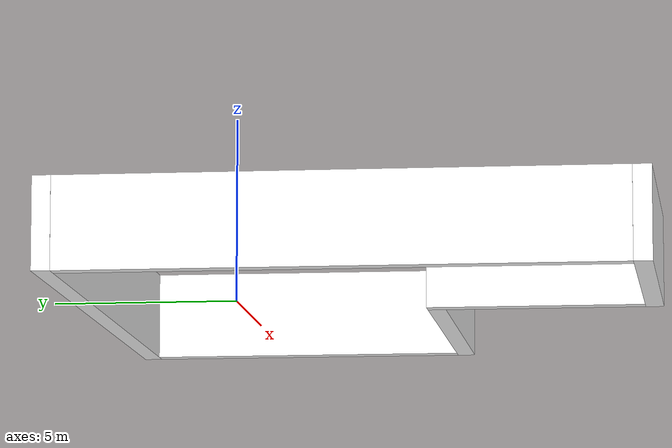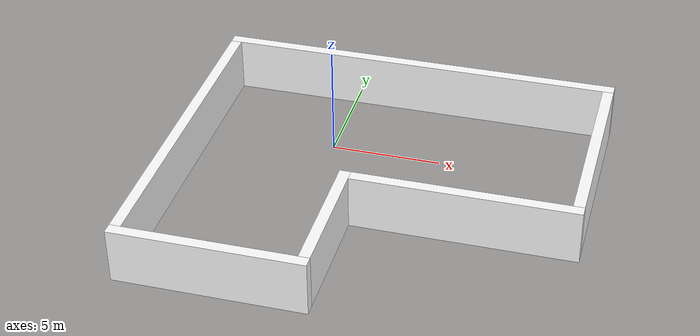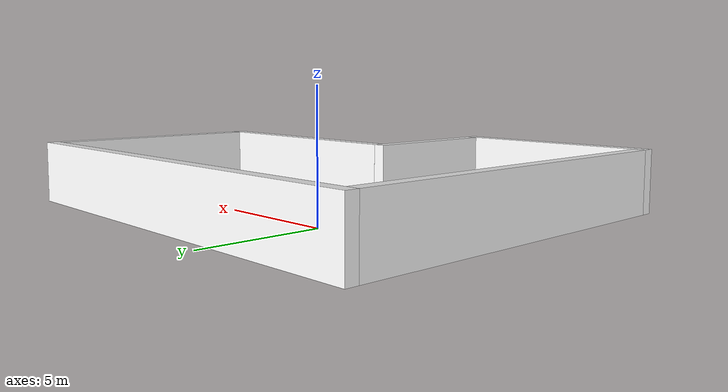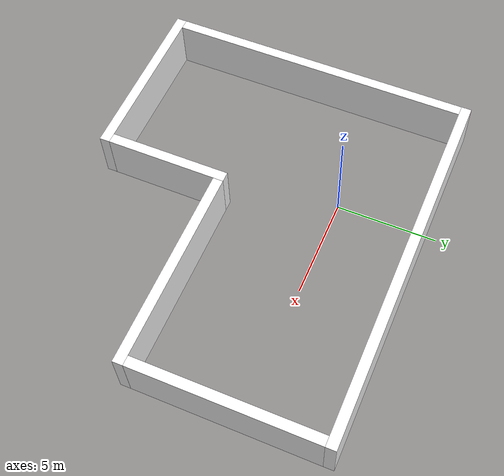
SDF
<?xml version="1.0" ?>
<sdf version='1.8'>
  <model name='small_mapping_warehouse'>
    <static>true</static>
    <link name='Wall_0'>
      <collision name='Wall_0_Collision'>
        <geometry>
          <box>
            <size>9 0.5 2.5</size>
          </box>
        </geometry>
        <pose>0 0 0 0 -0 0</pose>
        <max_contacts>10</max_contacts>
        <surface>
          <bounce/>
          <friction>
            <ode/>
          </friction>
          <contact>
            <ode/>
          </contact>
        </surface>
      </collision>
      <visual name='Wall_0_Visual'>
        <pose>0 0 0 0 -0 0</pose>
        <geometry>
          <box>
            <size>9 0.5 2.5</size>
          </box>
        </geometry>
        <material>
          <diffuse>1.0 1.0 1.0 1.0</diffuse>
          <specular>0.0 0.0 0.0 1.0</specular>
        </material>
      </visual>
      <velocity_decay>
        <linear>0</linear>
        <angular>0</angular>
      </velocity_decay>
      <pose>12 -0.5 1.25 0 -0 1.57</pose>
      <self_collide>0</self_collide>
      <kinematic>0</kinematic>
      <gravity>1</gravity>
    </link>

    <link name='Wall_1'>
      <collision name='Wall_1_Collision'>
        <geometry>
          <box>
            <size>6 0.5 2.5</size>
          </box>
        </geometry>
        <pose>0 0 0 0 -0 0</pose>
        <max_contacts>10</max_contacts>
        <surface>
          <bounce/>
          <friction>
            <ode/>
          </friction>
          <contact>
            <ode/>
          </contact>
        </surface>
      </collision>
      <visual name='Wall_1_Visual'>
        <pose>0 0 0 0 -0 0</pose>
        <geometry>
          <box>
            <size>6 0.5 2.5</size>
          </box>
        </geometry>
        <material>
          <diffuse>1.0 1.0 1.0 1.0</diffuse>
          <specular>0.0 0.0 0.0 1.0</specular>
        </material>
      </visual>
      <velocity_decay>
        <linear>0</linear>
        <angular>0</angular>
      </velocity_decay>
      <pose>2 -8 1.25 0 -0 1.57</pose>
      <self_collide>0</self_collide>
      <kinematic>0</kinematic>
      <gravity>1</gravity>
    </link>

    <link name='Wall_2'>
      <collision name='Wall_2_Collision'>
        <geometry>
          <box>
            <size>10 0.5 2.5</size>
          </box>
        </geometry>
        <pose>0 0 0 0 -0 0</pose>
        <max_contacts>10</max_contacts>
        <surface>
          <bounce/>
          <friction>
            <ode/>
          </friction>
          <contact>
            <ode/>
          </contact>
        </surface>
      </collision>
      <visual name='Wall_2_Visual'>
        <pose>0 0 0 0 -0 0</pose>
        <geometry>
          <box>
            <size>10 0.5 2.5</size>
          </box>
        </geometry>
        <material>
          <diffuse>1.0 1.0 1.0 1.0</diffuse>
          <specular>0.0 0.0 0.0 1.0</specular>
        </material>
      </visual>
      <velocity_decay>
        <linear>0</linear>
        <angular>0</angular>
      </velocity_decay>
      <pose>7.25 -5.25 1.25 0 -0 0</pose>
      <self_collide>0</self_collide>
      <kinematic>0</kinematic>
      <gravity>1</gravity>
    </link>

    <link name='Wall_3'>
      <collision name='Wall_3_Collision'>
        <geometry>
          <box>
            <size>8.5 0.5 2.5</size>
          </box>
        </geometry>
        <pose>0 0 0 0 -0 0</pose>
        <max_contacts>10</max_contacts>
        <surface>
          <bounce/>
          <friction>
            <ode/>
          </friction>
          <contact>
            <ode/>
          </contact>
        </surface>
      </collision>
      <visual name='Wall_3_Visual'>
        <pose>0 0 0 0 -0 0</pose>
        <geometry>
          <box>
            <size>8.5 0.5 2.5</size>
          </box>
        </geometry>
        <material>
          <diffuse>1.0 1.0 1.0 1.0</diffuse>
          <specular>0.0 0.0 0.0 1.0</specular>
        </material>
      </visual>
      <velocity_decay>
        <linear>0</linear>
        <angular>0</angular>
      </velocity_decay>
      <pose>-2 -11.25 1.25 0 -0 0</pose>
      <self_collide>0</self_collide>
      <kinematic>0</kinematic>
      <gravity>1</gravity>
    </link>

    <link name='Wall_4'>
      <collision name='Wall_4_Collision'>
        <geometry>
          <box>
            <size>15 0.5 2.5</size>
          </box>
        </geometry>
        <pose>0 0 0 0 -0 0</pose>
        <max_contacts>10</max_contacts>
        <surface>
          <bounce/>
          <friction>
            <ode/>
          </friction>
          <contact>
            <ode/>
          </contact>
        </surface>
      </collision>
      <visual name='Wall_4_Visual'>
        <pose>0 0 0 0 -0 0</pose>
        <geometry>
          <box>
            <size>15 0.5 2.5</size>
          </box>
        </geometry>
        <material>
          <diffuse>1.0 1.0 1.0 1.0</diffuse>
          <specular>0.0 0.0 0.0 1.0</specular>
        </material>
      </visual>
      <velocity_decay>
        <linear>0</linear>
        <angular>0</angular>
      </velocity_decay>
      <pose>-6 -3.5 1.25 0 -0 1.57</pose>
      <self_collide>0</self_collide>
      <kinematic>0</kinematic>
      <gravity>1</gravity>
    </link>

    <link name='Wall_5'>
      <collision name='Wall_5_Collision'>
        <geometry>
          <box>
            <size>18.5 0.5 2.5</size>
          </box>
        </geometry>
        <pose>0 0 0 0 -0 0</pose>
        <max_contacts>10</max_contacts>
        <surface>
          <bounce/>
          <friction>
            <ode/>
          </friction>
          <contact>
            <ode/>
          </contact>
        </surface>
      </collision>
      <visual name='Wall_5_Visual'>
        <pose>0 0 0 0 -0 0</pose>
        <geometry>
          <box>
            <size>18.5 0.5 2.5</size>
          </box>
        </geometry>
        <material>
          <diffuse>1.0 1.0 1.0 1.0</diffuse>
          <specular>0.0 0.0 0.0 1.0</specular>
        </material>
      </visual>
      <velocity_decay>
        <linear>0</linear>
        <angular>0</angular>
      </velocity_decay>
      <pose>3 4.25 1.25 0 -0 0</pose>
      <self_collide>0</self_collide>
      <kinematic>0</kinematic>
      <gravity>1</gravity>
    </link>

    <static>1</static>
    <pose>0 0 0 0 -0 0</pose>
  </model>
</sdf>
